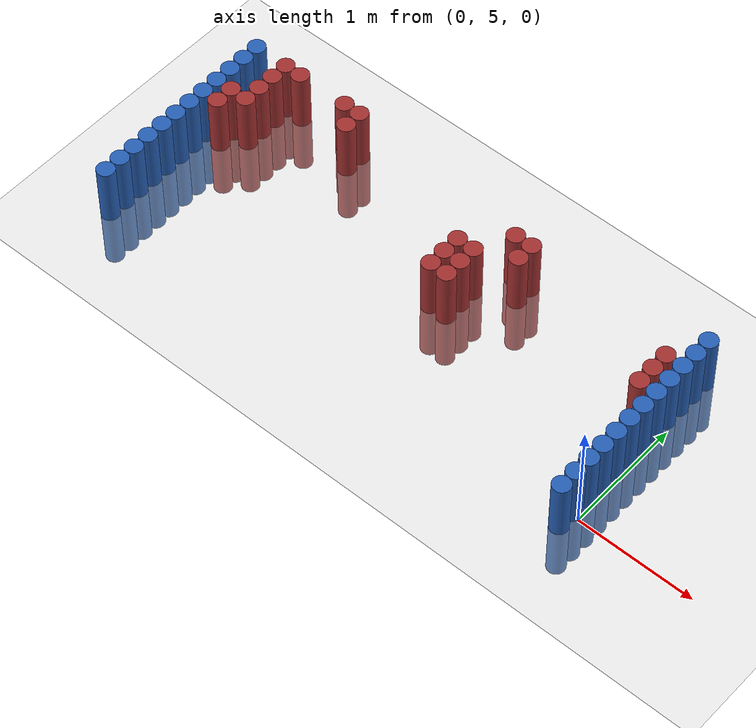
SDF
<sdf version="1.6">
 <world name="default">
  <model name="ground_plane">
   <static>1</static>
   <link name="link">
    <collision name="collision">
     <geometry><plane><normal>0 0 1</normal><size>100 100</size></plane></geometry>
     <surface><friction><ode><mu>100</mu><mu2>50</mu2></ode></friction></surface>
    </collision>
    <visual name="visual">
     <cast_shadows>0</cast_shadows>
     <geometry><plane><normal>0 0 1</normal><size>100 100</size></plane></geometry>
     <material>
      <script><uri>file://media/materials/scripts/gazebo.material</uri><name>Gazebo/Grey</name></script>
     </material>
    </visual>
   </link>
  </model>
  <model name="unit_cylinder_92">
   <static>1</static>
   <pose>-0.075000 4.875000 0.000000 0.000000 0.000000 0.000000</pose>
   <link name="link">
    <inertial>
     <mass>1</mass>
     <inertia><ixx>0.145833</ixx><ixy>0</ixy><ixz>0</ixz><iyy>0.145833</iyy><iyz>0</iyz><izz>0.125</izz></inertia>
    </inertial>
    <collision name="collision">
     <geometry><cylinder><radius>0.075000</radius><length>1</length></cylinder></geometry>
    </collision>
    <visual name="visual">
     <geometry><cylinder><radius>0.075000</radius><length>1</length></cylinder></geometry>
     <material>
      <ambient>0.152000 0.379000 0.720000 1</ambient>
      <diffuse>0.152000 0.379000 0.720000 1</diffuse>
     </material>
     <material>
      <script><name>Gazebo/Grey</name><uri>file://media/materials/scripts/gazebo.material</uri></script>
     </material>
    </visual>
   </link>
  </model>
  <model name="unit_cylinder_93">
   <static>1</static>
   <pose>-4.425000 4.875000 0.000000 0.000000 0.000000 0.000000</pose>
   <link name="link">
    <inertial>
     <mass>1</mass>
     <inertia><ixx>0.145833</ixx><ixy>0</ixy><ixz>0</ixz><iyy>0.145833</iyy><iyz>0</iyz><izz>0.125</izz></inertia>
    </inertial>
    <collision name="collision">
     <geometry><cylinder><radius>0.075000</radius><length>1</length></cylinder></geometry>
    </collision>
    <visual name="visual">
     <geometry><cylinder><radius>0.075000</radius><length>1</length></cylinder></geometry>
     <material>
      <ambient>0.152000 0.379000 0.720000 1</ambient>
      <diffuse>0.152000 0.379000 0.720000 1</diffuse>
     </material>
     <material>
      <script><name>Gazebo/Grey</name><uri>file://media/materials/scripts/gazebo.material</uri></script>
     </material>
    </visual>
   </link>
  </model>
  <model name="unit_cylinder_94">
   <static>1</static>
   <pose>-0.075000 5.025000 0.000000 0.000000 0.000000 0.000000</pose>
   <link name="link">
    <inertial>
     <mass>1</mass>
     <inertia><ixx>0.145833</ixx><ixy>0</ixy><ixz>0</ixz><iyy>0.145833</iyy><iyz>0</iyz><izz>0.125</izz></inertia>
    </inertial>
    <collision name="collision">
     <geometry><cylinder><radius>0.075000</radius><length>1</length></cylinder></geometry>
    </collision>
    <visual name="visual">
     <geometry><cylinder><radius>0.075000</radius><length>1</length></cylinder></geometry>
     <material>
      <ambient>0.152000 0.379000 0.720000 1</ambient>
      <diffuse>0.152000 0.379000 0.720000 1</diffuse>
     </material>
     <material>
      <script><name>Gazebo/Grey</name><uri>file://media/materials/scripts/gazebo.material</uri></script>
     </material>
    </visual>
   </link>
  </model>
  <model name="unit_cylinder_95">
   <static>1</static>
   <pose>-4.425000 5.025000 0.000000 0.000000 0.000000 0.000000</pose>
   <link name="link">
    <inertial>
     <mass>1</mass>
     <inertia><ixx>0.145833</ixx><ixy>0</ixy><ixz>0</ixz><iyy>0.145833</iyy><iyz>0</iyz><izz>0.125</izz></inertia>
    </inertial>
    <collision name="collision">
     <geometry><cylinder><radius>0.075000</radius><length>1</length></cylinder></geometry>
    </collision>
    <visual name="visual">
     <geometry><cylinder><radius>0.075000</radius><length>1</length></cylinder></geometry>
     <material>
      <ambient>0.152000 0.379000 0.720000 1</ambient>
      <diffuse>0.152000 0.379000 0.720000 1</diffuse>
     </material>
     <material>
      <script><name>Gazebo/Grey</name><uri>file://media/materials/scripts/gazebo.material</uri></script>
     </material>
    </visual>
   </link>
  </model>
  <model name="unit_cylinder_96">
   <static>1</static>
   <pose>-4.425000 5.175000 0.000000 0.000000 0.000000 0.000000</pose>
   <link name="link">
    <inertial>
     <mass>1</mass>
     <inertia><ixx>0.145833</ixx><ixy>0</ixy><ixz>0</ixz><iyy>0.145833</iyy><iyz>0</iyz><izz>0.125</izz></inertia>
    </inertial>
    <collision name="collision">
     <geometry><cylinder><radius>0.075000</radius><length>1</length></cylinder></geometry>
    </collision>
    <visual name="visual">
     <geometry><cylinder><radius>0.075000</radius><length>1</length></cylinder></geometry>
     <material>
      <ambient>0.152000 0.379000 0.720000 1</ambient>
      <diffuse>0.152000 0.379000 0.720000 1</diffuse>
     </material>
     <material>
      <script><name>Gazebo/Grey</name><uri>file://media/materials/scripts/gazebo.material</uri></script>
     </material>
    </visual>
   </link>
  </model>
  <model name="unit_cylinder_97">
   <static>1</static>
   <pose>-4.425000 5.325000 0.000000 0.000000 0.000000 0.000000</pose>
   <link name="link">
    <inertial>
     <mass>1</mass>
     <inertia><ixx>0.145833</ixx><ixy>0</ixy><ixz>0</ixz><iyy>0.145833</iyy><iyz>0</iyz><izz>0.125</izz></inertia>
    </inertial>
    <collision name="collision">
     <geometry><cylinder><radius>0.075000</radius><length>1</length></cylinder></geometry>
    </collision>
    <visual name="visual">
     <geometry><cylinder><radius>0.075000</radius><length>1</length></cylinder></geometry>
     <material>
      <ambient>0.152000 0.379000 0.720000 1</ambient>
      <diffuse>0.152000 0.379000 0.720000 1</diffuse>
     </material>
     <material>
      <script><name>Gazebo/Grey</name><uri>file://media/materials/scripts/gazebo.material</uri></script>
     </material>
    </visual>
   </link>
  </model>
  <model name="unit_cylinder_98">
   <static>1</static>
   <pose>-4.425000 5.475000 0.000000 0.000000 0.000000 0.000000</pose>
   <link name="link">
    <inertial>
     <mass>1</mass>
     <inertia><ixx>0.145833</ixx><ixy>0</ixy><ixz>0</ixz><iyy>0.145833</iyy><iyz>0</iyz><izz>0.125</izz></inertia>
    </inertial>
    <collision name="collision">
     <geometry><cylinder><radius>0.075000</radius><length>1</length></cylinder></geometry>
    </collision>
    <visual name="visual">
     <geometry><cylinder><radius>0.075000</radius><length>1</length></cylinder></geometry>
     <material>
      <ambient>0.152000 0.379000 0.720000 1</ambient>
      <diffuse>0.152000 0.379000 0.720000 1</diffuse>
     </material>
     <material>
      <script><name>Gazebo/Grey</name><uri>file://media/materials/scripts/gazebo.material</uri></script>
     </material>
    </visual>
   </link>
  </model>
  <model name="unit_cylinder_99">
   <static>1</static>
   <pose>-4.425000 5.625000 0.000000 0.000000 0.000000 0.000000</pose>
   <link name="link">
    <inertial>
     <mass>1</mass>
     <inertia><ixx>0.145833</ixx><ixy>0</ixy><ixz>0</ixz><iyy>0.145833</iyy><iyz>0</iyz><izz>0.125</izz></inertia>
    </inertial>
    <collision name="collision">
     <geometry><cylinder><radius>0.075000</radius><length>1</length></cylinder></geometry>
    </collision>
    <visual name="visual">
     <geometry><cylinder><radius>0.075000</radius><length>1</length></cylinder></geometry>
     <material>
      <ambient>0.152000 0.379000 0.720000 1</ambient>
      <diffuse>0.152000 0.379000 0.720000 1</diffuse>
     </material>
     <material>
      <script><name>Gazebo/Grey</name><uri>file://media/materials/scripts/gazebo.material</uri></script>
     </material>
    </visual>
   </link>
  </model>
  <model name="unit_cylinder_100">
   <static>1</static>
   <pose>-4.425000 5.775000 0.000000 0.000000 0.000000 0.000000</pose>
   <link name="link">
    <inertial>
     <mass>1</mass>
     <inertia><ixx>0.145833</ixx><ixy>0</ixy><ixz>0</ixz><iyy>0.145833</iyy><iyz>0</iyz><izz>0.125</izz></inertia>
    </inertial>
    <collision name="collision">
     <geometry><cylinder><radius>0.075000</radius><length>1</length></cylinder></geometry>
    </collision>
    <visual name="visual">
     <geometry><cylinder><radius>0.075000</radius><length>1</length></cylinder></geometry>
     <material>
      <ambient>0.152000 0.379000 0.720000 1</ambient>
      <diffuse>0.152000 0.379000 0.720000 1</diffuse>
     </material>
     <material>
      <script><name>Gazebo/Grey</name><uri>file://media/materials/scripts/gazebo.material</uri></script>
     </material>
    </visual>
   </link>
  </model>
  <model name="unit_cylinder_101">
   <static>1</static>
   <pose>-4.425000 5.925000 0.000000 0.000000 0.000000 0.000000</pose>
   <link name="link">
    <inertial>
     <mass>1</mass>
     <inertia><ixx>0.145833</ixx><ixy>0</ixy><ixz>0</ixz><iyy>0.145833</iyy><iyz>0</iyz><izz>0.125</izz></inertia>
    </inertial>
    <collision name="collision">
     <geometry><cylinder><radius>0.075000</radius><length>1</length></cylinder></geometry>
    </collision>
    <visual name="visual">
     <geometry><cylinder><radius>0.075000</radius><length>1</length></cylinder></geometry>
     <material>
      <ambient>0.152000 0.379000 0.720000 1</ambient>
      <diffuse>0.152000 0.379000 0.720000 1</diffuse>
     </material>
     <material>
      <script><name>Gazebo/Grey</name><uri>file://media/materials/scripts/gazebo.material</uri></script>
     </material>
    </visual>
   </link>
  </model>
  <model name="unit_cylinder_102">
   <static>1</static>
   <pose>-4.425000 6.075000 0.000000 0.000000 0.000000 0.000000</pose>
   <link name="link">
    <inertial>
     <mass>1</mass>
     <inertia><ixx>0.145833</ixx><ixy>0</ixy><ixz>0</ixz><iyy>0.145833</iyy><iyz>0</iyz><izz>0.125</izz></inertia>
    </inertial>
    <collision name="collision">
     <geometry><cylinder><radius>0.075000</radius><length>1</length></cylinder></geometry>
    </collision>
    <visual name="visual">
     <geometry><cylinder><radius>0.075000</radius><length>1</length></cylinder></geometry>
     <material>
      <ambient>0.152000 0.379000 0.720000 1</ambient>
      <diffuse>0.152000 0.379000 0.720000 1</diffuse>
     </material>
     <material>
      <script><name>Gazebo/Grey</name><uri>file://media/materials/scripts/gazebo.material</uri></script>
     </material>
    </visual>
   </link>
  </model>
  <model name="unit_cylinder_103">
   <static>1</static>
   <pose>-4.425000 6.225000 0.000000 0.000000 0.000000 0.000000</pose>
   <link name="link">
    <inertial>
     <mass>1</mass>
     <inertia><ixx>0.145833</ixx><ixy>0</ixy><ixz>0</ixz><iyy>0.145833</iyy><iyz>0</iyz><izz>0.125</izz></inertia>
    </inertial>
    <collision name="collision">
     <geometry><cylinder><radius>0.075000</radius><length>1</length></cylinder></geometry>
    </collision>
    <visual name="visual">
     <geometry><cylinder><radius>0.075000</radius><length>1</length></cylinder></geometry>
     <material>
      <ambient>0.152000 0.379000 0.720000 1</ambient>
      <diffuse>0.152000 0.379000 0.720000 1</diffuse>
     </material>
     <material>
      <script><name>Gazebo/Grey</name><uri>file://media/materials/scripts/gazebo.material</uri></script>
     </material>
    </visual>
   </link>
  </model>
  <model name="unit_cylinder_104">
   <static>1</static>
   <pose>-4.425000 6.375000 0.000000 0.000000 0.000000 0.000000</pose>
   <link name="link">
    <inertial>
     <mass>1</mass>
     <inertia><ixx>0.145833</ixx><ixy>0</ixy><ixz>0</ixz><iyy>0.145833</iyy><iyz>0</iyz><izz>0.125</izz></inertia>
    </inertial>
    <collision name="collision">
     <geometry><cylinder><radius>0.075000</radius><length>1</length></cylinder></geometry>
    </collision>
    <visual name="visual">
     <geometry><cylinder><radius>0.075000</radius><length>1</length></cylinder></geometry>
     <material>
      <ambient>0.152000 0.379000 0.720000 1</ambient>
      <diffuse>0.152000 0.379000 0.720000 1</diffuse>
     </material>
     <material>
      <script><name>Gazebo/Grey</name><uri>file://media/materials/scripts/gazebo.material</uri></script>
     </material>
    </visual>
   </link>
  </model>
  <model name="unit_cylinder_105">
   <static>1</static>
   <pose>-4.425000 6.525000 0.000000 0.000000 0.000000 0.000000</pose>
   <link name="link">
    <inertial>
     <mass>1</mass>
     <inertia><ixx>0.145833</ixx><ixy>0</ixy><ixz>0</ixz><iyy>0.145833</iyy><iyz>0</iyz><izz>0.125</izz></inertia>
    </inertial>
    <collision name="collision">
     <geometry><cylinder><radius>0.075000</radius><length>1</length></cylinder></geometry>
    </collision>
    <visual name="visual">
     <geometry><cylinder><radius>0.075000</radius><length>1</length></cylinder></geometry>
     <material>
      <ambient>0.152000 0.379000 0.720000 1</ambient>
      <diffuse>0.152000 0.379000 0.720000 1</diffuse>
     </material>
     <material>
      <script><name>Gazebo/Grey</name><uri>file://media/materials/scripts/gazebo.material</uri></script>
     </material>
    </visual>
   </link>
  </model>
  <model name="unit_cylinder_126">
   <static>1</static>
   <pose>-4.275000 5.925000 0.000000 0.000000 0.000000 0.000000</pose>
   <link name="link">
    <inertial>
     <mass>1</mass>
     <inertia><ixx>0.145833</ixx><ixy>0</ixy><ixz>0</ixz><iyy>0.145833</iyy><iyz>0</iyz><izz>0.125</izz></inertia>
    </inertial>
    <collision name="collision">
     <geometry><cylinder><radius>0.075000</radius><length>1</length></cylinder></geometry>
    </collision>
    <visual name="visual">
     <geometry><cylinder><radius>0.075000</radius><length>1</length></cylinder></geometry>
     <material>
      <ambient>0.648000 0.192000 0.192000 1</ambient>
      <diffuse>0.648000 0.192000 0.192000 1</diffuse>
     </material>
     <material>
      <script><name>Gazebo/Grey</name><uri>file://media/materials/scripts/gazebo.material</uri></script>
     </material>
    </visual>
   </link>
  </model>
  <model name="unit_cylinder_127">
   <static>1</static>
   <pose>-4.275000 6.075000 0.000000 0.000000 0.000000 0.000000</pose>
   <link name="link">
    <inertial>
     <mass>1</mass>
     <inertia><ixx>0.145833</ixx><ixy>0</ixy><ixz>0</ixz><iyy>0.145833</iyy><iyz>0</iyz><izz>0.125</izz></inertia>
    </inertial>
    <collision name="collision">
     <geometry><cylinder><radius>0.075000</radius><length>1</length></cylinder></geometry>
    </collision>
    <visual name="visual">
     <geometry><cylinder><radius>0.075000</radius><length>1</length></cylinder></geometry>
     <material>
      <ambient>0.648000 0.192000 0.192000 1</ambient>
      <diffuse>0.648000 0.192000 0.192000 1</diffuse>
     </material>
     <material>
      <script><name>Gazebo/Grey</name><uri>file://media/materials/scripts/gazebo.material</uri></script>
     </material>
    </visual>
   </link>
  </model>
  <model name="unit_cylinder_134">
   <static>1</static>
   <pose>-4.125000 6.075000 0.000000 0.000000 0.000000 0.000000</pose>
   <link name="link">
    <inertial>
     <mass>1</mass>
     <inertia><ixx>0.145833</ixx><ixy>0</ixy><ixz>0</ixz><iyy>0.145833</iyy><iyz>0</iyz><izz>0.125</izz></inertia>
    </inertial>
    <collision name="collision">
     <geometry><cylinder><radius>0.075000</radius><length>1</length></cylinder></geometry>
    </collision>
    <visual name="visual">
     <geometry><cylinder><radius>0.075000</radius><length>1</length></cylinder></geometry>
     <material>
      <ambient>0.648000 0.192000 0.192000 1</ambient>
      <diffuse>0.648000 0.192000 0.192000 1</diffuse>
     </material>
     <material>
      <script><name>Gazebo/Grey</name><uri>file://media/materials/scripts/gazebo.material</uri></script>
     </material>
    </visual>
   </link>
  </model>
  <model name="unit_cylinder_135">
   <static>1</static>
   <pose>-4.125000 6.225000 0.000000 0.000000 0.000000 0.000000</pose>
   <link name="link">
    <inertial>
     <mass>1</mass>
     <inertia><ixx>0.145833</ixx><ixy>0</ixy><ixz>0</ixz><iyy>0.145833</iyy><iyz>0</iyz><izz>0.125</izz></inertia>
    </inertial>
    <collision name="collision">
     <geometry><cylinder><radius>0.075000</radius><length>1</length></cylinder></geometry>
    </collision>
    <visual name="visual">
     <geometry><cylinder><radius>0.075000</radius><length>1</length></cylinder></geometry>
     <material>
      <ambient>0.648000 0.192000 0.192000 1</ambient>
      <diffuse>0.648000 0.192000 0.192000 1</diffuse>
     </material>
     <material>
      <script><name>Gazebo/Grey</name><uri>file://media/materials/scripts/gazebo.material</uri></script>
     </material>
    </visual>
   </link>
  </model>
  <model name="unit_cylinder_136">
   <static>1</static>
   <pose>-4.125000 6.375000 0.000000 0.000000 0.000000 0.000000</pose>
   <link name="link">
    <inertial>
     <mass>1</mass>
     <inertia><ixx>0.145833</ixx><ixy>0</ixy><ixz>0</ixz><iyy>0.145833</iyy><iyz>0</iyz><izz>0.125</izz></inertia>
    </inertial>
    <collision name="collision">
     <geometry><cylinder><radius>0.075000</radius><length>1</length></cylinder></geometry>
    </collision>
    <visual name="visual">
     <geometry><cylinder><radius>0.075000</radius><length>1</length></cylinder></geometry>
     <material>
      <ambient>0.648000 0.192000 0.192000 1</ambient>
      <diffuse>0.648000 0.192000 0.192000 1</diffuse>
     </material>
     <material>
      <script><name>Gazebo/Grey</name><uri>file://media/materials/scripts/gazebo.material</uri></script>
     </material>
    </visual>
   </link>
  </model>
  <model name="unit_cylinder_137">
   <static>1</static>
   <pose>-4.125000 6.525000 0.000000 0.000000 0.000000 0.000000</pose>
   <link name="link">
    <inertial>
     <mass>1</mass>
     <inertia><ixx>0.145833</ixx><ixy>0</ixy><ixz>0</ixz><iyy>0.145833</iyy><iyz>0</iyz><izz>0.125</izz></inertia>
    </inertial>
    <collision name="collision">
     <geometry><cylinder><radius>0.075000</radius><length>1</length></cylinder></geometry>
    </collision>
    <visual name="visual">
     <geometry><cylinder><radius>0.075000</radius><length>1</length></cylinder></geometry>
     <material>
      <ambient>0.648000 0.192000 0.192000 1</ambient>
      <diffuse>0.648000 0.192000 0.192000 1</diffuse>
     </material>
     <material>
      <script><name>Gazebo/Grey</name><uri>file://media/materials/scripts/gazebo.material</uri></script>
     </material>
    </visual>
   </link>
  </model>
  <model name="unit_cylinder_143">
   <static>1</static>
   <pose>-3.975000 6.525000 0.000000 0.000000 0.000000 0.000000</pose>
   <link name="link">
    <inertial>
     <mass>1</mass>
     <inertia><ixx>0.145833</ixx><ixy>0</ixy><ixz>0</ixz><iyy>0.145833</iyy><iyz>0</iyz><izz>0.125</izz></inertia>
    </inertial>
    <collision name="collision">
     <geometry><cylinder><radius>0.075000</radius><length>1</length></cylinder></geometry>
    </collision>
    <visual name="visual">
     <geometry><cylinder><radius>0.075000</radius><length>1</length></cylinder></geometry>
     <material>
      <ambient>0.648000 0.192000 0.192000 1</ambient>
      <diffuse>0.648000 0.192000 0.192000 1</diffuse>
     </material>
     <material>
      <script><name>Gazebo/Grey</name><uri>file://media/materials/scripts/gazebo.material</uri></script>
     </material>
    </visual>
   </link>
  </model>
  <model name="unit_cylinder_162">
   <static>1</static>
   <pose>-3.525000 6.525000 0.000000 0.000000 0.000000 0.000000</pose>
   <link name="link">
    <inertial>
     <mass>1</mass>
     <inertia><ixx>0.145833</ixx><ixy>0</ixy><ixz>0</ixz><iyy>0.145833</iyy><iyz>0</iyz><izz>0.125</izz></inertia>
    </inertial>
    <collision name="collision">
     <geometry><cylinder><radius>0.075000</radius><length>1</length></cylinder></geometry>
    </collision>
    <visual name="visual">
     <geometry><cylinder><radius>0.075000</radius><length>1</length></cylinder></geometry>
     <material>
      <ambient>0.648000 0.192000 0.192000 1</ambient>
      <diffuse>0.648000 0.192000 0.192000 1</diffuse>
     </material>
     <material>
      <script><name>Gazebo/Grey</name><uri>file://media/materials/scripts/gazebo.material</uri></script>
     </material>
    </visual>
   </link>
  </model>
  <model name="unit_cylinder_169">
   <static>1</static>
   <pose>-3.375000 6.375000 0.000000 0.000000 0.000000 0.000000</pose>
   <link name="link">
    <inertial>
     <mass>1</mass>
     <inertia><ixx>0.145833</ixx><ixy>0</ixy><ixz>0</ixz><iyy>0.145833</iyy><iyz>0</iyz><izz>0.125</izz></inertia>
    </inertial>
    <collision name="collision">
     <geometry><cylinder><radius>0.075000</radius><length>1</length></cylinder></geometry>
    </collision>
    <visual name="visual">
     <geometry><cylinder><radius>0.075000</radius><length>1</length></cylinder></geometry>
     <material>
      <ambient>0.648000 0.192000 0.192000 1</ambient>
      <diffuse>0.648000 0.192000 0.192000 1</diffuse>
     </material>
     <material>
      <script><name>Gazebo/Grey</name><uri>file://media/materials/scripts/gazebo.material</uri></script>
     </material>
    </visual>
   </link>
  </model>
  <model name="unit_cylinder_170">
   <static>1</static>
   <pose>-3.375000 6.525000 0.000000 0.000000 0.000000 0.000000</pose>
   <link name="link">
    <inertial>
     <mass>1</mass>
     <inertia><ixx>0.145833</ixx><ixy>0</ixy><ixz>0</ixz><iyy>0.145833</iyy><iyz>0</iyz><izz>0.125</izz></inertia>
    </inertial>
    <collision name="collision">
     <geometry><cylinder><radius>0.075000</radius><length>1</length></cylinder></geometry>
    </collision>
    <visual name="visual">
     <geometry><cylinder><radius>0.075000</radius><length>1</length></cylinder></geometry>
     <material>
      <ambient>0.648000 0.192000 0.192000 1</ambient>
      <diffuse>0.648000 0.192000 0.192000 1</diffuse>
     </material>
     <material>
      <script><name>Gazebo/Grey</name><uri>file://media/materials/scripts/gazebo.material</uri></script>
     </material>
    </visual>
   </link>
  </model>
  <model name="unit_cylinder_187">
   <static>1</static>
   <pose>-2.025000 5.775000 0.000000 0.000000 0.000000 0.000000</pose>
   <link name="link">
    <inertial>
     <mass>1</mass>
     <inertia><ixx>0.145833</ixx><ixy>0</ixy><ixz>0</ixz><iyy>0.145833</iyy><iyz>0</iyz><izz>0.125</izz></inertia>
    </inertial>
    <collision name="collision">
     <geometry><cylinder><radius>0.075000</radius><length>1</length></cylinder></geometry>
    </collision>
    <visual name="visual">
     <geometry><cylinder><radius>0.075000</radius><length>1</length></cylinder></geometry>
     <material>
      <ambient>0.648000 0.192000 0.192000 1</ambient>
      <diffuse>0.648000 0.192000 0.192000 1</diffuse>
     </material>
     <material>
      <script><name>Gazebo/Grey</name><uri>file://media/materials/scripts/gazebo.material</uri></script>
     </material>
    </visual>
   </link>
  </model>
  <model name="unit_cylinder_188">
   <static>1</static>
   <pose>-2.025000 5.925000 0.000000 0.000000 0.000000 0.000000</pose>
   <link name="link">
    <inertial>
     <mass>1</mass>
     <inertia><ixx>0.145833</ixx><ixy>0</ixy><ixz>0</ixz><iyy>0.145833</iyy><iyz>0</iyz><izz>0.125</izz></inertia>
    </inertial>
    <collision name="collision">
     <geometry><cylinder><radius>0.075000</radius><length>1</length></cylinder></geometry>
    </collision>
    <visual name="visual">
     <geometry><cylinder><radius>0.075000</radius><length>1</length></cylinder></geometry>
     <material>
      <ambient>0.648000 0.192000 0.192000 1</ambient>
      <diffuse>0.648000 0.192000 0.192000 1</diffuse>
     </material>
     <material>
      <script><name>Gazebo/Grey</name><uri>file://media/materials/scripts/gazebo.material</uri></script>
     </material>
    </visual>
   </link>
  </model>
  <model name="unit_cylinder_189">
   <static>1</static>
   <pose>-2.025000 6.075000 0.000000 0.000000 0.000000 0.000000</pose>
   <link name="link">
    <inertial>
     <mass>1</mass>
     <inertia><ixx>0.145833</ixx><ixy>0</ixy><ixz>0</ixz><iyy>0.145833</iyy><iyz>0</iyz><izz>0.125</izz></inertia>
    </inertial>
    <collision name="collision">
     <geometry><cylinder><radius>0.075000</radius><length>1</length></cylinder></geometry>
    </collision>
    <visual name="visual">
     <geometry><cylinder><radius>0.075000</radius><length>1</length></cylinder></geometry>
     <material>
      <ambient>0.648000 0.192000 0.192000 1</ambient>
      <diffuse>0.648000 0.192000 0.192000 1</diffuse>
     </material>
     <material>
      <script><name>Gazebo/Grey</name><uri>file://media/materials/scripts/gazebo.material</uri></script>
     </material>
    </visual>
   </link>
  </model>
  <model name="unit_cylinder_190">
   <static>1</static>
   <pose>-1.875000 5.775000 0.000000 0.000000 0.000000 0.000000</pose>
   <link name="link">
    <inertial>
     <mass>1</mass>
     <inertia><ixx>0.145833</ixx><ixy>0</ixy><ixz>0</ixz><iyy>0.145833</iyy><iyz>0</iyz><izz>0.125</izz></inertia>
    </inertial>
    <collision name="collision">
     <geometry><cylinder><radius>0.075000</radius><length>1</length></cylinder></geometry>
    </collision>
    <visual name="visual">
     <geometry><cylinder><radius>0.075000</radius><length>1</length></cylinder></geometry>
     <material>
      <ambient>0.648000 0.192000 0.192000 1</ambient>
      <diffuse>0.648000 0.192000 0.192000 1</diffuse>
     </material>
     <material>
      <script><name>Gazebo/Grey</name><uri>file://media/materials/scripts/gazebo.material</uri></script>
     </material>
    </visual>
   </link>
  </model>
  <model name="unit_cylinder_191">
   <static>1</static>
   <pose>-1.875000 5.925000 0.000000 0.000000 0.000000 0.000000</pose>
   <link name="link">
    <inertial>
     <mass>1</mass>
     <inertia><ixx>0.145833</ixx><ixy>0</ixy><ixz>0</ixz><iyy>0.145833</iyy><iyz>0</iyz><izz>0.125</izz></inertia>
    </inertial>
    <collision name="collision">
     <geometry><cylinder><radius>0.075000</radius><length>1</length></cylinder></geometry>
    </collision>
    <visual name="visual">
     <geometry><cylinder><radius>0.075000</radius><length>1</length></cylinder></geometry>
     <material>
      <ambient>0.648000 0.192000 0.192000 1</ambient>
      <diffuse>0.648000 0.192000 0.192000 1</diffuse>
     </material>
     <material>
      <script><name>Gazebo/Grey</name><uri>file://media/materials/scripts/gazebo.material</uri></script>
     </material>
    </visual>
   </link>
  </model>
  <model name="unit_cylinder_192">
   <static>1</static>
   <pose>-1.875000 6.075000 0.000000 0.000000 0.000000 0.000000</pose>
   <link name="link">
    <inertial>
     <mass>1</mass>
     <inertia><ixx>0.145833</ixx><ixy>0</ixy><ixz>0</ixz><iyy>0.145833</iyy><iyz>0</iyz><izz>0.125</izz></inertia>
    </inertial>
    <collision name="collision">
     <geometry><cylinder><radius>0.075000</radius><length>1</length></cylinder></geometry>
    </collision>
    <visual name="visual">
     <geometry><cylinder><radius>0.075000</radius><length>1</length></cylinder></geometry>
     <material>
      <ambient>0.648000 0.192000 0.192000 1</ambient>
      <diffuse>0.648000 0.192000 0.192000 1</diffuse>
     </material>
     <material>
      <script><name>Gazebo/Grey</name><uri>file://media/materials/scripts/gazebo.material</uri></script>
     </material>
    </visual>
   </link>
  </model>
  <model name="unit_cylinder_193">
   <static>1</static>
   <pose>-1.725000 6.375000 0.000000 0.000000 0.000000 0.000000</pose>
   <link name="link">
    <inertial>
     <mass>1</mass>
     <inertia><ixx>0.145833</ixx><ixy>0</ixy><ixz>0</ixz><iyy>0.145833</iyy><iyz>0</iyz><izz>0.125</izz></inertia>
    </inertial>
    <collision name="collision">
     <geometry><cylinder><radius>0.075000</radius><length>1</length></cylinder></geometry>
    </collision>
    <visual name="visual">
     <geometry><cylinder><radius>0.075000</radius><length>1</length></cylinder></geometry>
     <material>
      <ambient>0.648000 0.192000 0.192000 1</ambient>
      <diffuse>0.648000 0.192000 0.192000 1</diffuse>
     </material>
     <material>
      <script><name>Gazebo/Grey</name><uri>file://media/materials/scripts/gazebo.material</uri></script>
     </material>
    </visual>
   </link>
  </model>
  <model name="unit_cylinder_195">
   <static>1</static>
   <pose>-1.575000 6.225000 0.000000 0.000000 0.000000 0.000000</pose>
   <link name="link">
    <inertial>
     <mass>1</mass>
     <inertia><ixx>0.145833</ixx><ixy>0</ixy><ixz>0</ixz><iyy>0.145833</iyy><iyz>0</iyz><izz>0.125</izz></inertia>
    </inertial>
    <collision name="collision">
     <geometry><cylinder><radius>0.075000</radius><length>1</length></cylinder></geometry>
    </collision>
    <visual name="visual">
     <geometry><cylinder><radius>0.075000</radius><length>1</length></cylinder></geometry>
     <material>
      <ambient>0.648000 0.192000 0.192000 1</ambient>
      <diffuse>0.648000 0.192000 0.192000 1</diffuse>
     </material>
     <material>
      <script><name>Gazebo/Grey</name><uri>file://media/materials/scripts/gazebo.material</uri></script>
     </material>
    </visual>
   </link>
  </model>
  <model name="unit_cylinder_196">
   <static>1</static>
   <pose>-1.575000 6.375000 0.000000 0.000000 0.000000 0.000000</pose>
   <link name="link">
    <inertial>
     <mass>1</mass>
     <inertia><ixx>0.145833</ixx><ixy>0</ixy><ixz>0</ixz><iyy>0.145833</iyy><iyz>0</iyz><izz>0.125</izz></inertia>
    </inertial>
    <collision name="collision">
     <geometry><cylinder><radius>0.075000</radius><length>1</length></cylinder></geometry>
    </collision>
    <visual name="visual">
     <geometry><cylinder><radius>0.075000</radius><length>1</length></cylinder></geometry>
     <material>
      <ambient>0.648000 0.192000 0.192000 1</ambient>
      <diffuse>0.648000 0.192000 0.192000 1</diffuse>
     </material>
     <material>
      <script><name>Gazebo/Grey</name><uri>file://media/materials/scripts/gazebo.material</uri></script>
     </material>
    </visual>
   </link>
  </model>
  <model name="unit_cylinder_234">
   <static>1</static>
   <pose>-0.225000 5.925000 0.000000 0.000000 0.000000 0.000000</pose>
   <link name="link">
    <inertial>
     <mass>1</mass>
     <inertia><ixx>0.145833</ixx><ixy>0</ixy><ixz>0</ixz><iyy>0.145833</iyy><iyz>0</iyz><izz>0.125</izz></inertia>
    </inertial>
    <collision name="collision">
     <geometry><cylinder><radius>0.075000</radius><length>1</length></cylinder></geometry>
    </collision>
    <visual name="visual">
     <geometry><cylinder><radius>0.075000</radius><length>1</length></cylinder></geometry>
     <material>
      <ambient>0.648000 0.192000 0.192000 1</ambient>
      <diffuse>0.648000 0.192000 0.192000 1</diffuse>
     </material>
     <material>
      <script><name>Gazebo/Grey</name><uri>file://media/materials/scripts/gazebo.material</uri></script>
     </material>
    </visual>
   </link>
  </model>
  <model name="unit_cylinder_235">
   <static>1</static>
   <pose>-0.225000 6.075000 0.000000 0.000000 0.000000 0.000000</pose>
   <link name="link">
    <inertial>
     <mass>1</mass>
     <inertia><ixx>0.145833</ixx><ixy>0</ixy><ixz>0</ixz><iyy>0.145833</iyy><iyz>0</iyz><izz>0.125</izz></inertia>
    </inertial>
    <collision name="collision">
     <geometry><cylinder><radius>0.075000</radius><length>1</length></cylinder></geometry>
    </collision>
    <visual name="visual">
     <geometry><cylinder><radius>0.075000</radius><length>1</length></cylinder></geometry>
     <material>
      <ambient>0.648000 0.192000 0.192000 1</ambient>
      <diffuse>0.648000 0.192000 0.192000 1</diffuse>
     </material>
     <material>
      <script><name>Gazebo/Grey</name><uri>file://media/materials/scripts/gazebo.material</uri></script>
     </material>
    </visual>
   </link>
  </model>
  <model name="unit_cylinder_236">
   <static>1</static>
   <pose>-0.225000 6.225000 0.000000 0.000000 0.000000 0.000000</pose>
   <link name="link">
    <inertial>
     <mass>1</mass>
     <inertia><ixx>0.145833</ixx><ixy>0</ixy><ixz>0</ixz><iyy>0.145833</iyy><iyz>0</iyz><izz>0.125</izz></inertia>
    </inertial>
    <collision name="collision">
     <geometry><cylinder><radius>0.075000</radius><length>1</length></cylinder></geometry>
    </collision>
    <visual name="visual">
     <geometry><cylinder><radius>0.075000</radius><length>1</length></cylinder></geometry>
     <material>
      <ambient>0.648000 0.192000 0.192000 1</ambient>
      <diffuse>0.648000 0.192000 0.192000 1</diffuse>
     </material>
     <material>
      <script><name>Gazebo/Grey</name><uri>file://media/materials/scripts/gazebo.material</uri></script>
     </material>
    </visual>
   </link>
  </model>
  <model name="unit_cylinder_245">
   <static>1</static>
   <pose>-0.075000 5.175000 0.000000 0.000000 0.000000 0.000000</pose>
   <link name="link">
    <inertial>
     <mass>1</mass>
     <inertia><ixx>0.145833</ixx><ixy>0</ixy><ixz>0</ixz><iyy>0.145833</iyy><iyz>0</iyz><izz>0.125</izz></inertia>
    </inertial>
    <collision name="collision">
     <geometry><cylinder><radius>0.075000</radius><length>1</length></cylinder></geometry>
    </collision>
    <visual name="visual">
     <geometry><cylinder><radius>0.075000</radius><length>1</length></cylinder></geometry>
     <material>
      <ambient>0.152000 0.379000 0.720000 1</ambient>
      <diffuse>0.152000 0.379000 0.720000 1</diffuse>
     </material>
     <material>
      <script><name>Gazebo/Grey</name><uri>file://media/materials/scripts/gazebo.material</uri></script>
     </material>
    </visual>
   </link>
  </model>
  <model name="unit_cylinder_246">
   <static>1</static>
   <pose>-0.075000 5.325000 0.000000 0.000000 0.000000 0.000000</pose>
   <link name="link">
    <inertial>
     <mass>1</mass>
     <inertia><ixx>0.145833</ixx><ixy>0</ixy><ixz>0</ixz><iyy>0.145833</iyy><iyz>0</iyz><izz>0.125</izz></inertia>
    </inertial>
    <collision name="collision">
     <geometry><cylinder><radius>0.075000</radius><length>1</length></cylinder></geometry>
    </collision>
    <visual name="visual">
     <geometry><cylinder><radius>0.075000</radius><length>1</length></cylinder></geometry>
     <material>
      <ambient>0.152000 0.379000 0.720000 1</ambient>
      <diffuse>0.152000 0.379000 0.720000 1</diffuse>
     </material>
     <material>
      <script><name>Gazebo/Grey</name><uri>file://media/materials/scripts/gazebo.material</uri></script>
     </material>
    </visual>
   </link>
  </model>
  <model name="unit_cylinder_247">
   <static>1</static>
   <pose>-0.075000 5.475000 0.000000 0.000000 0.000000 0.000000</pose>
   <link name="link">
    <inertial>
     <mass>1</mass>
     <inertia><ixx>0.145833</ixx><ixy>0</ixy><ixz>0</ixz><iyy>0.145833</iyy><iyz>0</iyz><izz>0.125</izz></inertia>
    </inertial>
    <collision name="collision">
     <geometry><cylinder><radius>0.075000</radius><length>1</length></cylinder></geometry>
    </collision>
    <visual name="visual">
     <geometry><cylinder><radius>0.075000</radius><length>1</length></cylinder></geometry>
     <material>
      <ambient>0.152000 0.379000 0.720000 1</ambient>
      <diffuse>0.152000 0.379000 0.720000 1</diffuse>
     </material>
     <material>
      <script><name>Gazebo/Grey</name><uri>file://media/materials/scripts/gazebo.material</uri></script>
     </material>
    </visual>
   </link>
  </model>
  <model name="unit_cylinder_248">
   <static>1</static>
   <pose>-0.075000 5.625000 0.000000 0.000000 0.000000 0.000000</pose>
   <link name="link">
    <inertial>
     <mass>1</mass>
     <inertia><ixx>0.145833</ixx><ixy>0</ixy><ixz>0</ixz><iyy>0.145833</iyy><iyz>0</iyz><izz>0.125</izz></inertia>
    </inertial>
    <collision name="collision">
     <geometry><cylinder><radius>0.075000</radius><length>1</length></cylinder></geometry>
    </collision>
    <visual name="visual">
     <geometry><cylinder><radius>0.075000</radius><length>1</length></cylinder></geometry>
     <material>
      <ambient>0.152000 0.379000 0.720000 1</ambient>
      <diffuse>0.152000 0.379000 0.720000 1</diffuse>
     </material>
     <material>
      <script><name>Gazebo/Grey</name><uri>file://media/materials/scripts/gazebo.material</uri></script>
     </material>
    </visual>
   </link>
  </model>
  <model name="unit_cylinder_249">
   <static>1</static>
   <pose>-0.075000 5.775000 0.000000 0.000000 0.000000 0.000000</pose>
   <link name="link">
    <inertial>
     <mass>1</mass>
     <inertia><ixx>0.145833</ixx><ixy>0</ixy><ixz>0</ixz><iyy>0.145833</iyy><iyz>0</iyz><izz>0.125</izz></inertia>
    </inertial>
    <collision name="collision">
     <geometry><cylinder><radius>0.075000</radius><length>1</length></cylinder></geometry>
    </collision>
    <visual name="visual">
     <geometry><cylinder><radius>0.075000</radius><length>1</length></cylinder></geometry>
     <material>
      <ambient>0.152000 0.379000 0.720000 1</ambient>
      <diffuse>0.152000 0.379000 0.720000 1</diffuse>
     </material>
     <material>
      <script><name>Gazebo/Grey</name><uri>file://media/materials/scripts/gazebo.material</uri></script>
     </material>
    </visual>
   </link>
  </model>
  <model name="unit_cylinder_250">
   <static>1</static>
   <pose>-0.075000 5.925000 0.000000 0.000000 0.000000 0.000000</pose>
   <link name="link">
    <inertial>
     <mass>1</mass>
     <inertia><ixx>0.145833</ixx><ixy>0</ixy><ixz>0</ixz><iyy>0.145833</iyy><iyz>0</iyz><izz>0.125</izz></inertia>
    </inertial>
    <collision name="collision">
     <geometry><cylinder><radius>0.075000</radius><length>1</length></cylinder></geometry>
    </collision>
    <visual name="visual">
     <geometry><cylinder><radius>0.075000</radius><length>1</length></cylinder></geometry>
     <material>
      <ambient>0.152000 0.379000 0.720000 1</ambient>
      <diffuse>0.152000 0.379000 0.720000 1</diffuse>
     </material>
     <material>
      <script><name>Gazebo/Grey</name><uri>file://media/materials/scripts/gazebo.material</uri></script>
     </material>
    </visual>
   </link>
  </model>
  <model name="unit_cylinder_251">
   <static>1</static>
   <pose>-0.075000 6.075000 0.000000 0.000000 0.000000 0.000000</pose>
   <link name="link">
    <inertial>
     <mass>1</mass>
     <inertia><ixx>0.145833</ixx><ixy>0</ixy><ixz>0</ixz><iyy>0.145833</iyy><iyz>0</iyz><izz>0.125</izz></inertia>
    </inertial>
    <collision name="collision">
     <geometry><cylinder><radius>0.075000</radius><length>1</length></cylinder></geometry>
    </collision>
    <visual name="visual">
     <geometry><cylinder><radius>0.075000</radius><length>1</length></cylinder></geometry>
     <material>
      <ambient>0.152000 0.379000 0.720000 1</ambient>
      <diffuse>0.152000 0.379000 0.720000 1</diffuse>
     </material>
     <material>
      <script><name>Gazebo/Grey</name><uri>file://media/materials/scripts/gazebo.material</uri></script>
     </material>
    </visual>
   </link>
  </model>
  <model name="unit_cylinder_252">
   <static>1</static>
   <pose>-0.075000 6.225000 0.000000 0.000000 0.000000 0.000000</pose>
   <link name="link">
    <inertial>
     <mass>1</mass>
     <inertia><ixx>0.145833</ixx><ixy>0</ixy><ixz>0</ixz><iyy>0.145833</iyy><iyz>0</iyz><izz>0.125</izz></inertia>
    </inertial>
    <collision name="collision">
     <geometry><cylinder><radius>0.075000</radius><length>1</length></cylinder></geometry>
    </collision>
    <visual name="visual">
     <geometry><cylinder><radius>0.075000</radius><length>1</length></cylinder></geometry>
     <material>
      <ambient>0.152000 0.379000 0.720000 1</ambient>
      <diffuse>0.152000 0.379000 0.720000 1</diffuse>
     </material>
     <material>
      <script><name>Gazebo/Grey</name><uri>file://media/materials/scripts/gazebo.material</uri></script>
     </material>
    </visual>
   </link>
  </model>
  <model name="unit_cylinder_253">
   <static>1</static>
   <pose>-0.075000 6.375000 0.000000 0.000000 0.000000 0.000000</pose>
   <link name="link">
    <inertial>
     <mass>1</mass>
     <inertia><ixx>0.145833</ixx><ixy>0</ixy><ixz>0</ixz><iyy>0.145833</iyy><iyz>0</iyz><izz>0.125</izz></inertia>
    </inertial>
    <collision name="collision">
     <geometry><cylinder><radius>0.075000</radius><length>1</length></cylinder></geometry>
    </collision>
    <visual name="visual">
     <geometry><cylinder><radius>0.075000</radius><length>1</length></cylinder></geometry>
     <material>
      <ambient>0.152000 0.379000 0.720000 1</ambient>
      <diffuse>0.152000 0.379000 0.720000 1</diffuse>
     </material>
     <material>
      <script><name>Gazebo/Grey</name><uri>file://media/materials/scripts/gazebo.material</uri></script>
     </material>
    </visual>
   </link>
  </model>
  <model name="unit_cylinder_254">
   <static>1</static>
   <pose>-0.075000 6.525000 0.000000 0.000000 0.000000 0.000000</pose>
   <link name="link">
    <inertial>
     <mass>1</mass>
     <inertia><ixx>0.145833</ixx><ixy>0</ixy><ixz>0</ixz><iyy>0.145833</iyy><iyz>0</iyz><izz>0.125</izz></inertia>
    </inertial>
    <collision name="collision">
     <geometry><cylinder><radius>0.075000</radius><length>1</length></cylinder></geometry>
    </collision>
    <visual name="visual">
     <geometry><cylinder><radius>0.075000</radius><length>1</length></cylinder></geometry>
     <material>
      <ambient>0.152000 0.379000 0.720000 1</ambient>
      <diffuse>0.152000 0.379000 0.720000 1</diffuse>
     </material>
     <material>
      <script><name>Gazebo/Grey</name><uri>file://media/materials/scripts/gazebo.material</uri></script>
     </material>
    </visual>
   </link>
  </model>
 </world>
</sdf>
